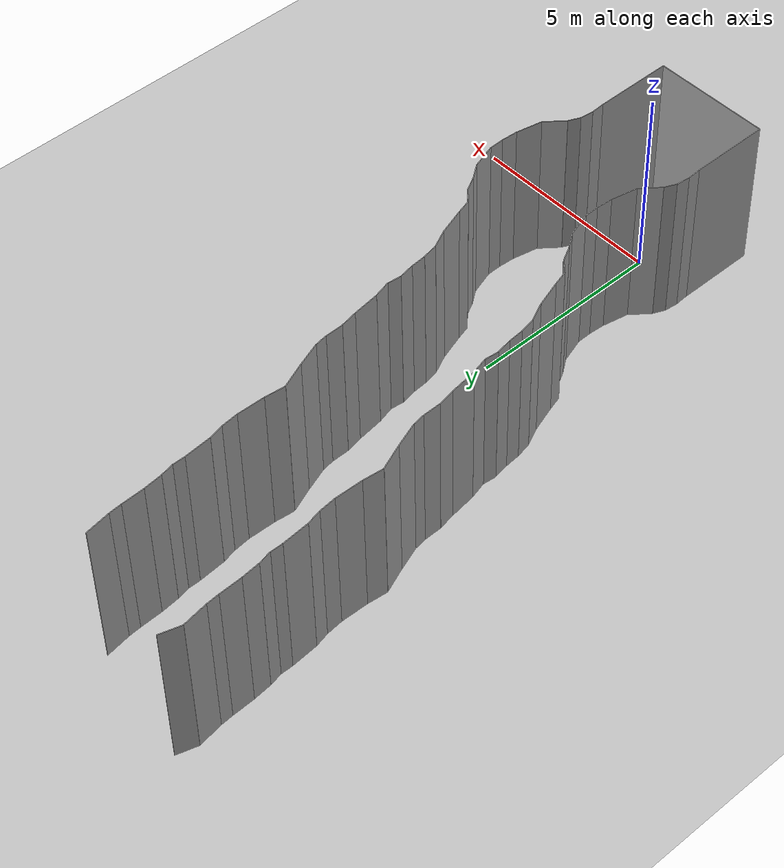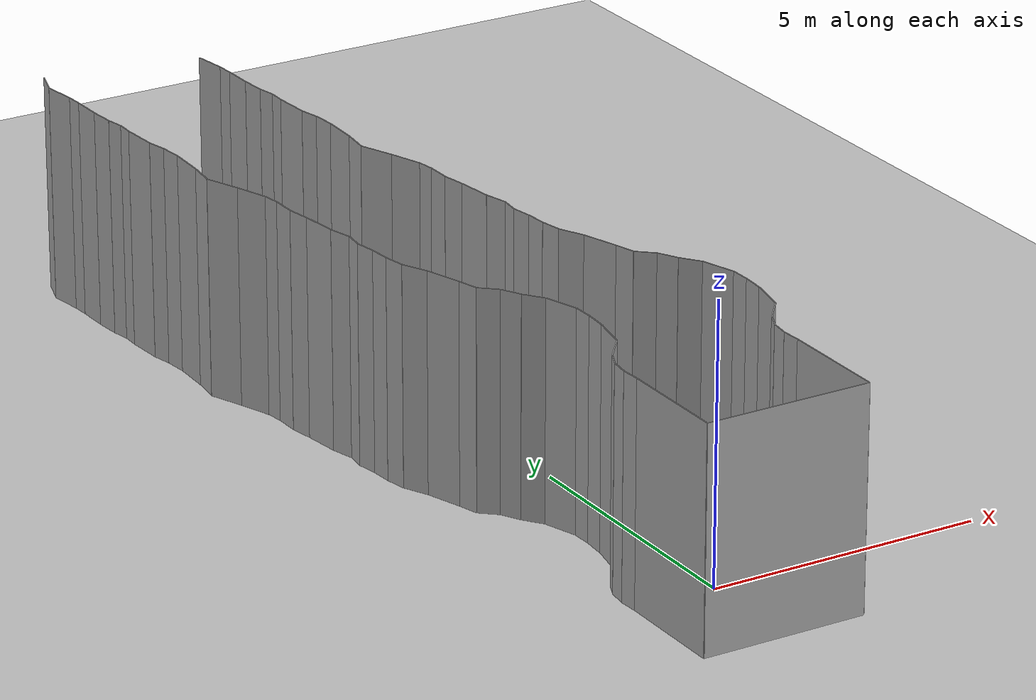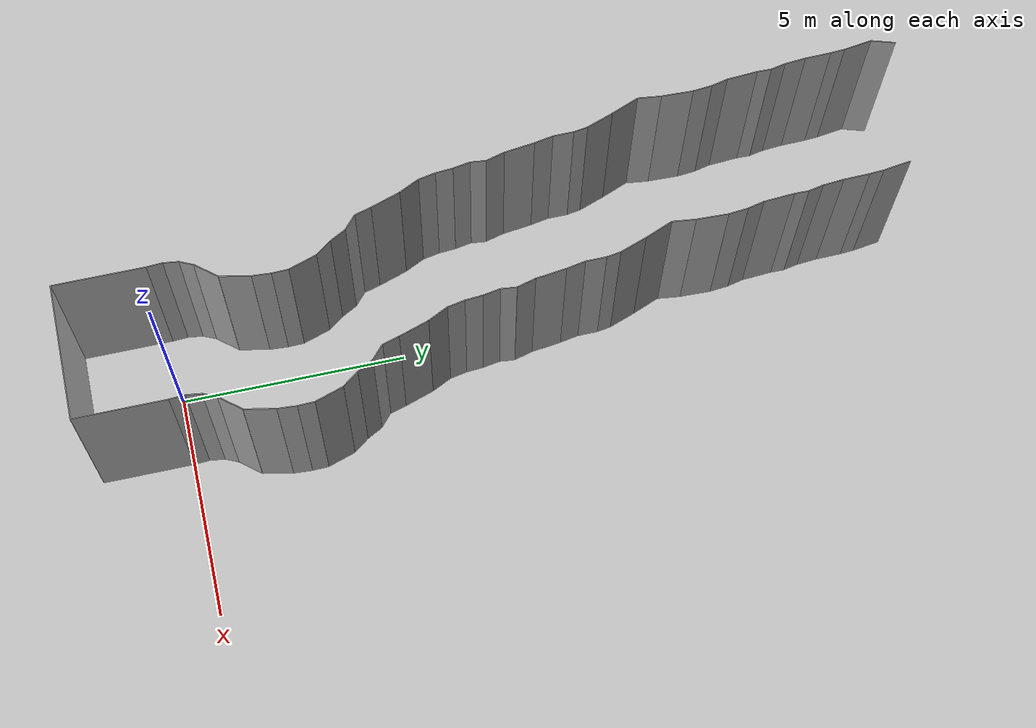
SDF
<sdf version="1.6">
 <world name="default">
  <model name="ground_plane">
   <static>1</static>
   <link name="link">
    <collision name="collision">
     <geometry><plane><normal>0 0 1</normal><size>200 200</size></plane></geometry>
     <surface><friction><ode><mu>100</mu><mu2>50</mu2></ode></friction></surface>
    </collision>
    <visual name="visual">
     <cast_shadows>0</cast_shadows>
     <geometry><plane><normal>0 0 1</normal><size>200 200</size></plane></geometry>
     <material>
      <script><uri>file://media/materials/scripts/gazebo.material</uri><name>Gazebo/Grey</name></script>
     </material>
    </visual>
   </link>
   <pose>0 100 0 0 -0 0</pose>
  </model>
  <model name="wall_back">
   <static>1</static>
   <pose>0.0 -2 2 0.0 0 0.0</pose>
   <link name="link">
    <collision name="collision"><geometry><box><size>3 0.02 4</size></box></geometry></collision>
    <visual name="visual">
     <material>
      <script><name>Gazebo/Grey</name><uri>file://media/materials/scripts/gazebo.material</uri></script>
     </material>
     <geometry><box><size>3 0.02 4</size></box></geometry>
    </visual>
   </link>
  </model>
  <model name="wall_left">
   <static>1</static>
   <pose>1.5 -1 2 0 0 0.00</pose>
   <link name="link">
    <collision name="collision"><geometry><box><size>0.02 2 4</size></box></geometry></collision>
    <visual name="visual">
     <material>
      <script><name>Gazebo/Grey</name><uri>file://media/materials/scripts/gazebo.material</uri></script>
     </material>
     <geometry><box><size>0.02 2 4</size></box></geometry>
    </visual>
   </link>
  </model>
  <model name="wall_right">
   <static>1</static>
   <pose>-1.5 -1 2 0 0 0.00</pose>
   <link name="link">
    <collision name="collision"><geometry><box><size>0.02 2 4</size></box></geometry></collision>
    <visual name="visual">
     <material>
      <script><name>Gazebo/Grey</name><uri>file://media/materials/scripts/gazebo.material</uri></script>
     </material>
     <geometry><box><size>0.02 2 4</size></box></geometry>
    </visual>
   </link>
  </model>
  <model name="wall_0">
   <static>1</static>
   <pose>-1.510469168773756 0.1737599955648286 2 0 0 0.06017799457438244</pose>
   <link name="link">
    <collision name="collision"><geometry><box><size>0.02 0.348150194907 4</size></box></geometry></collision>
    <visual name="visual">
     <material>
      <script><name>Gazebo/Grey</name><uri>file://media/materials/scripts/gazebo.material</uri></script>
     </material>
     <geometry><box><size>0.02 0.348150194907 4</size></box></geometry>
    </visual>
   </link>
  </model>
  <model name="wall_1">
   <static>1</static>
   <pose>1.489530831226244 0.1737599955648286 2 0 0 0.06017799457438244</pose>
   <link name="link">
    <collision name="collision"><geometry><box><size>0.02 0.348150194907 4</size></box></geometry></collision>
    <visual name="visual">
     <material>
      <script><name>Gazebo/Grey</name><uri>file://media/materials/scripts/gazebo.material</uri></script>
     </material>
     <geometry><box><size>0.02 0.348150194907 4</size></box></geometry>
    </visual>
   </link>
  </model>
  <model name="wall_2">
   <static>1</static>
   <pose>-1.4994530378009172 0.5157518972264558 2 0 0 -0.12702476339603733</pose>
   <link name="link">
    <collision name="collision"><geometry><box><size>0.02 0.339196652897 4</size></box></geometry></collision>
    <visual name="visual">
     <material>
      <script><name>Gazebo/Grey</name><uri>file://media/materials/scripts/gazebo.material</uri></script>
     </material>
     <geometry><box><size>0.02 0.339196652897 4</size></box></geometry>
    </visual>
   </link>
  </model>
  <model name="wall_3">
   <static>1</static>
   <pose>1.5005469621990828 0.5157518972264558 2 0 0 -0.12702476339603733</pose>
   <link name="link">
    <collision name="collision"><geometry><box><size>0.02 0.339196652897 4</size></box></geometry></collision>
    <visual name="visual">
     <material>
      <script><name>Gazebo/Grey</name><uri>file://media/materials/scripts/gazebo.material</uri></script>
     </material>
     <geometry><box><size>0.02 0.339196652897 4</size></box></geometry>
    </visual>
   </link>
  </model>
  <model name="wall_4">
   <static>1</static>
   <pose>-1.41199776466791 0.828177129915068 2 0 0 -0.4290821500316682</pose>
   <link name="link">
    <collision name="collision"><geometry><box><size>0.02 0.317135635476 4</size></box></geometry></collision>
    <visual name="visual">
     <material>
      <script><name>Gazebo/Grey</name><uri>file://media/materials/scripts/gazebo.material</uri></script>
     </material>
     <geometry><box><size>0.02 0.317135635476 4</size></box></geometry>
    </visual>
   </link>
  </model>
  <model name="wall_5">
   <static>1</static>
   <pose>1.58800223533209 0.828177129915068 2 0 0 -0.4290821500316682</pose>
   <link name="link">
    <collision name="collision"><geometry><box><size>0.02 0.317135635476 4</size></box></geometry></collision>
    <visual name="visual">
     <material>
      <script><name>Gazebo/Grey</name><uri>file://media/materials/scripts/gazebo.material</uri></script>
     </material>
     <geometry><box><size>0.02 0.317135635476 4</size></box></geometry>
    </visual>
   </link>
  </model>
  <model name="wall_6">
   <static>1</static>
   <pose>-1.1598921838826721 1.201235196086324 2 0 0 -0.6827980242633842</pose>
   <link name="link">
    <collision name="collision"><geometry><box><size>0.02 0.590001808012 4</size></box></geometry></collision>
    <visual name="visual">
     <material>
      <script><name>Gazebo/Grey</name><uri>file://media/materials/scripts/gazebo.material</uri></script>
     </material>
     <geometry><box><size>0.02 0.590001808012 4</size></box></geometry>
    </visual>
   </link>
  </model>
  <model name="wall_7">
   <static>1</static>
   <pose>1.8401078161173279 1.201235196086324 2 0 0 -0.6827980242633842</pose>
   <link name="link">
    <collision name="collision"><geometry><box><size>0.02 0.590001808012 4</size></box></geometry></collision>
    <visual name="visual">
     <material>
      <script><name>Gazebo/Grey</name><uri>file://media/materials/scripts/gazebo.material</uri></script>
     </material>
     <geometry><box><size>0.02 0.590001808012 4</size></box></geometry>
    </visual>
   </link>
  </model>
  <model name="wall_8">
   <static>1</static>
   <pose>-0.9057189968333267 1.7638394172357073 2 0 0 -0.2011084965366152</pose>
   <link name="link">
    <collision name="collision"><geometry><box><size>0.02 0.681208202544 4</size></box></geometry></collision>
    <visual name="visual">
     <material>
      <script><name>Gazebo/Grey</name><uri>file://media/materials/scripts/gazebo.material</uri></script>
     </material>
     <geometry><box><size>0.02 0.681208202544 4</size></box></geometry>
    </visual>
   </link>
  </model>
  <model name="wall_9">
   <static>1</static>
   <pose>2.094281003166673 1.7638394172357073 2 0 0 -0.2011084965366152</pose>
   <link name="link">
    <collision name="collision"><geometry><box><size>0.02 0.681208202544 4</size></box></geometry></collision>
    <visual name="visual">
     <material>
      <script><name>Gazebo/Grey</name><uri>file://media/materials/scripts/gazebo.material</uri></script>
     </material>
     <geometry><box><size>0.02 0.681208202544 4</size></box></geometry>
    </visual>
   </link>
  </model>
  <model name="wall_10">
   <static>1</static>
   <pose>-0.8237843901977059 2.3054047616103084 2 0 0 -0.06676921285618291</pose>
   <link name="link">
    <collision name="collision"><geometry><box><size>0.02 0.416579964038 4</size></box></geometry></collision>
    <visual name="visual">
     <material>
      <script><name>Gazebo/Grey</name><uri>file://media/materials/scripts/gazebo.material</uri></script>
     </material>
     <geometry><box><size>0.02 0.416579964038 4</size></box></geometry>
    </visual>
   </link>
  </model>
  <model name="wall_11">
   <static>1</static>
   <pose>2.176215609802294 2.3054047616103084 2 0 0 -0.06676921285618291</pose>
   <link name="link">
    <collision name="collision"><geometry><box><size>0.02 0.416579964038 4</size></box></geometry></collision>
    <visual name="visual">
     <material>
      <script><name>Gazebo/Grey</name><uri>file://media/materials/scripts/gazebo.material</uri></script>
     </material>
     <geometry><box><size>0.02 0.416579964038 4</size></box></geometry>
    </visual>
   </link>
  </model>
  <model name="wall_12">
   <static>1</static>
   <pose>-0.8146648058953255 2.6953685319939176 2 0 0 0.026223796939105346</pose>
   <link name="link">
    <collision name="collision"><geometry><box><size>0.02 0.364401105025 4</size></box></geometry></collision>
    <visual name="visual">
     <material>
      <script><name>Gazebo/Grey</name><uri>file://media/materials/scripts/gazebo.material</uri></script>
     </material>
     <geometry><box><size>0.02 0.364401105025 4</size></box></geometry>
    </visual>
   </link>
  </model>
  <model name="wall_13">
   <static>1</static>
   <pose>2.1853351941046744 2.6953685319939176 2 0 0 0.026223796939105346</pose>
   <link name="link">
    <collision name="collision"><geometry><box><size>0.02 0.364401105025 4</size></box></geometry></collision>
    <visual name="visual">
     <material>
      <script><name>Gazebo/Grey</name><uri>file://media/materials/scripts/gazebo.material</uri></script>
     </material>
     <geometry><box><size>0.02 0.364401105025 4</size></box></geometry>
    </visual>
   </link>
  </model>
  <model name="wall_14">
   <static>1</static>
   <pose>-0.9193898926830465 3.187725549000354 2 0 0 0.31168284968315185</pose>
   <link name="link">
    <collision name="collision"><geometry><box><size>0.02 0.651844850915 4</size></box></geometry></collision>
    <visual name="visual">
     <material>
      <script><name>Gazebo/Grey</name><uri>file://media/materials/scripts/gazebo.material</uri></script>
     </material>
     <geometry><box><size>0.02 0.651844850915 4</size></box></geometry>
    </visual>
   </link>
  </model>
  <model name="wall_15">
   <static>1</static>
   <pose>2.0806101073169536 3.187725549000354 2 0 0 0.31168284968315185</pose>
   <link name="link">
    <collision name="collision"><geometry><box><size>0.02 0.651844850915 4</size></box></geometry></collision>
    <visual name="visual">
     <material>
      <script><name>Gazebo/Grey</name><uri>file://media/materials/scripts/gazebo.material</uri></script>
     </material>
     <geometry><box><size>0.02 0.651844850915 4</size></box></geometry>
    </visual>
   </link>
  </model>
  <model name="wall_16">
   <static>1</static>
   <pose>-1.1455721387722844 3.668385369498843 2 0 0 0.6374814492717766</pose>
   <link name="link">
    <collision name="collision"><geometry><box><size>0.02 0.424194345688 4</size></box></geometry></collision>
    <visual name="visual">
     <material>
      <script><name>Gazebo/Grey</name><uri>file://media/materials/scripts/gazebo.material</uri></script>
     </material>
     <geometry><box><size>0.02 0.424194345688 4</size></box></geometry>
    </visual>
   </link>
  </model>
  <model name="wall_17">
   <static>1</static>
   <pose>1.8544278612277156 3.668385369498843 2 0 0 0.6374814492717766</pose>
   <link name="link">
    <collision name="collision"><geometry><box><size>0.02 0.424194345688 4</size></box></geometry></collision>
    <visual name="visual">
     <material>
      <script><name>Gazebo/Grey</name><uri>file://media/materials/scripts/gazebo.material</uri></script>
     </material>
     <geometry><box><size>0.02 0.424194345688 4</size></box></geometry>
    </visual>
   </link>
  </model>
  <model name="wall_18">
   <static>1</static>
   <pose>-1.3664680322749911 4.014171257539867 2 0 0 0.4950224103680032</pose>
   <link name="link">
    <collision name="collision"><geometry><box><size>0.02 0.398530757652 4</size></box></geometry></collision>
    <visual name="visual">
     <material>
      <script><name>Gazebo/Grey</name><uri>file://media/materials/scripts/gazebo.material</uri></script>
     </material>
     <geometry><box><size>0.02 0.398530757652 4</size></box></geometry>
    </visual>
   </link>
  </model>
  <model name="wall_19">
   <static>1</static>
   <pose>1.6335319677250089 4.014171257539867 2 0 0 0.4950224103680032</pose>
   <link name="link">
    <collision name="collision"><geometry><box><size>0.02 0.398530757652 4</size></box></geometry></collision>
    <visual name="visual">
     <material>
      <script><name>Gazebo/Grey</name><uri>file://media/materials/scripts/gazebo.material</uri></script>
     </material>
     <geometry><box><size>0.02 0.398530757652 4</size></box></geometry>
    </visual>
   </link>
  </model>
  <model name="wall_20">
   <static>1</static>
   <pose>-1.6069622279533375 4.3185332015171225 2 0 0 0.8465050263261898</pose>
   <link name="link">
    <collision name="collision"><geometry><box><size>0.02 0.38942296853 4</size></box></geometry></collision>
    <visual name="visual">
     <material>
      <script><name>Gazebo/Grey</name><uri>file://media/materials/scripts/gazebo.material</uri></script>
     </material>
     <geometry><box><size>0.02 0.38942296853 4</size></box></geometry>
    </visual>
   </link>
  </model>
  <model name="wall_21">
   <static>1</static>
   <pose>1.3930377720466625 4.3185332015171225 2 0 0 0.8465050263261898</pose>
   <link name="link">
    <collision name="collision"><geometry><box><size>0.02 0.38942296853 4</size></box></geometry></collision>
    <visual name="visual">
     <material>
      <script><name>Gazebo/Grey</name><uri>file://media/materials/scripts/gazebo.material</uri></script>
     </material>
     <geometry><box><size>0.02 0.38942296853 4</size></box></geometry>
    </visual>
   </link>
  </model>
  <model name="wall_22">
   <static>1</static>
   <pose>-1.8047803618723768 4.632374893844421 2 0 0 0.27418359341675613</pose>
   <link name="link">
    <collision name="collision"><geometry><box><size>0.02 0.383993318341 4</size></box></geometry></collision>
    <visual name="visual">
     <material>
      <script><name>Gazebo/Grey</name><uri>file://media/materials/scripts/gazebo.material</uri></script>
     </material>
     <geometry><box><size>0.02 0.383993318341 4</size></box></geometry>
    </visual>
   </link>
  </model>
  <model name="wall_23">
   <static>1</static>
   <pose>1.1952196381276232 4.632374893844421 2 0 0 0.27418359341675613</pose>
   <link name="link">
    <collision name="collision"><geometry><box><size>0.02 0.383993318341 4</size></box></geometry></collision>
    <visual name="visual">
     <material>
      <script><name>Gazebo/Grey</name><uri>file://media/materials/scripts/gazebo.material</uri></script>
     </material>
     <geometry><box><size>0.02 0.383993318341 4</size></box></geometry>
    </visual>
   </link>
  </model>
  <model name="wall_24">
   <static>1</static>
   <pose>-1.963753511820921 5.145152706719379 2 0 0 0.3153435752088974</pose>
   <link name="link">
    <collision name="collision"><geometry><box><size>0.02 0.689926116398 4</size></box></geometry></collision>
    <visual name="visual">
     <material>
      <script><name>Gazebo/Grey</name><uri>file://media/materials/scripts/gazebo.material</uri></script>
     </material>
     <geometry><box><size>0.02 0.689926116398 4</size></box></geometry>
    </visual>
   </link>
  </model>
  <model name="wall_25">
   <static>1</static>
   <pose>1.036246488179079 5.145152706719379 2 0 0 0.3153435752088974</pose>
   <link name="link">
    <collision name="collision"><geometry><box><size>0.02 0.689926116398 4</size></box></geometry></collision>
    <visual name="visual">
     <material>
      <script><name>Gazebo/Grey</name><uri>file://media/materials/scripts/gazebo.material</uri></script>
     </material>
     <geometry><box><size>0.02 0.689926116398 4</size></box></geometry>
    </visual>
   </link>
  </model>
  <model name="wall_26">
   <static>1</static>
   <pose>-2.1779065068808707 5.694591785305188 2 0 0 0.450640609318869</pose>
   <link name="link">
    <collision name="collision"><geometry><box><size>0.02 0.492099526882 4</size></box></geometry></collision>
    <visual name="visual">
     <material>
      <script><name>Gazebo/Grey</name><uri>file://media/materials/scripts/gazebo.material</uri></script>
     </material>
     <geometry><box><size>0.02 0.492099526882 4</size></box></geometry>
    </visual>
   </link>
  </model>
  <model name="wall_27">
   <static>1</static>
   <pose>0.8220934931191293 5.694591785305188 2 0 0 0.450640609318869</pose>
   <link name="link">
    <collision name="collision"><geometry><box><size>0.02 0.492099526882 4</size></box></geometry></collision>
    <visual name="visual">
     <material>
      <script><name>Gazebo/Grey</name><uri>file://media/materials/scripts/gazebo.material</uri></script>
     </material>
     <geometry><box><size>0.02 0.492099526882 4</size></box></geometry>
    </visual>
   </link>
  </model>
  <model name="wall_28">
   <static>1</static>
   <pose>-2.32236321173488 6.109094926779471 2 0 0 0.19085240196837205</pose>
   <link name="link">
    <collision name="collision"><geometry><box><size>0.02 0.393172780468 4</size></box></geometry></collision>
    <visual name="visual">
     <material>
      <script><name>Gazebo/Grey</name><uri>file://media/materials/scripts/gazebo.material</uri></script>
     </material>
     <geometry><box><size>0.02 0.393172780468 4</size></box></geometry>
    </visual>
   </link>
  </model>
  <model name="wall_29">
   <static>1</static>
   <pose>0.67763678826512 6.109094926779471 2 0 0 0.19085240196837205</pose>
   <link name="link">
    <collision name="collision"><geometry><box><size>0.02 0.393172780468 4</size></box></geometry></collision>
    <visual name="visual">
     <material>
      <script><name>Gazebo/Grey</name><uri>file://media/materials/scripts/gazebo.material</uri></script>
     </material>
     <geometry><box><size>0.02 0.393172780468 4</size></box></geometry>
    </visual>
   </link>
  </model>
  <model name="wall_30">
   <static>1</static>
   <pose>-2.374198630573105 6.495337697885498 2 0 0 0.07512669214178795</pose>
   <link name="link">
    <collision name="collision"><geometry><box><size>0.02 0.387544782264 4</size></box></geometry></collision>
    <visual name="visual">
     <material>
      <script><name>Gazebo/Grey</name><uri>file://media/materials/scripts/gazebo.material</uri></script>
     </material>
     <geometry><box><size>0.02 0.387544782264 4</size></box></geometry>
    </visual>
   </link>
  </model>
  <model name="wall_31">
   <static>1</static>
   <pose>0.6258013694268949 6.495337697885498 2 0 0 0.07512669214178795</pose>
   <link name="link">
    <collision name="collision"><geometry><box><size>0.02 0.387544782264 4</size></box></geometry></collision>
    <visual name="visual">
     <material>
      <script><name>Gazebo/Grey</name><uri>file://media/materials/scripts/gazebo.material</uri></script>
     </material>
     <geometry><box><size>0.02 0.387544782264 4</size></box></geometry>
    </visual>
   </link>
  </model>
  <model name="wall_32">
   <static>1</static>
   <pose>-2.4218261019833407 6.88067813417852 2 0 0 0.17053539702044512</pose>
   <link name="link">
    <collision name="collision"><geometry><box><size>0.02 0.389884883473 4</size></box></geometry></collision>
    <visual name="visual">
     <material>
      <script><name>Gazebo/Grey</name><uri>file://media/materials/scripts/gazebo.material</uri></script>
     </material>
     <geometry><box><size>0.02 0.389884883473 4</size></box></geometry>
    </visual>
   </link>
  </model>
  <model name="wall_33">
   <static>1</static>
   <pose>0.5781738980166593 6.88067813417852 2 0 0 0.17053539702044512</pose>
   <link name="link">
    <collision name="collision"><geometry><box><size>0.02 0.389884883473 4</size></box></geometry></collision>
    <visual name="visual">
     <material>
      <script><name>Gazebo/Grey</name><uri>file://media/materials/scripts/gazebo.material</uri></script>
     </material>
     <geometry><box><size>0.02 0.389884883473 4</size></box></geometry>
    </visual>
   </link>
  </model>
  <model name="wall_34">
   <static>1</static>
   <pose>-2.4358964294610845 7.2439056489470754 2 0 0 -0.11066190136848338</pose>
   <link name="link">
    <collision name="collision"><geometry><box><size>0.02 0.34433200213 4</size></box></geometry></collision>
    <visual name="visual">
     <material>
      <script><name>Gazebo/Grey</name><uri>file://media/materials/scripts/gazebo.material</uri></script>
     </material>
     <geometry><box><size>0.02 0.34433200213 4</size></box></geometry>
    </visual>
   </link>
  </model>
  <model name="wall_35">
   <static>1</static>
   <pose>0.5641035705389155 7.2439056489470754 2 0 0 -0.11066190136848338</pose>
   <link name="link">
    <collision name="collision"><geometry><box><size>0.02 0.34433200213 4</size></box></geometry></collision>
    <visual name="visual">
     <material>
      <script><name>Gazebo/Grey</name><uri>file://media/materials/scripts/gazebo.material</uri></script>
     </material>
     <geometry><box><size>0.02 0.34433200213 4</size></box></geometry>
    </visual>
   </link>
  </model>
  <model name="wall_36">
   <static>1</static>
   <pose>-2.471697332495646 7.624812421858121 2 0 0 0.255563577798341</pose>
   <link name="link">
    <collision name="collision"><geometry><box><size>0.02 0.433673021365 4</size></box></geometry></collision>
    <visual name="visual">
     <material>
      <script><name>Gazebo/Grey</name><uri>file://media/materials/scripts/gazebo.material</uri></script>
     </material>
     <geometry><box><size>0.02 0.433673021365 4</size></box></geometry>
    </visual>
   </link>
  </model>
  <model name="wall_37">
   <static>1</static>
   <pose>0.5283026675043541 7.624812421858121 2 0 0 0.255563577798341</pose>
   <link name="link">
    <collision name="collision"><geometry><box><size>0.02 0.433673021365 4</size></box></geometry></collision>
    <visual name="visual">
     <material>
      <script><name>Gazebo/Grey</name><uri>file://media/materials/scripts/gazebo.material</uri></script>
     </material>
     <geometry><box><size>0.02 0.433673021365 4</size></box></geometry>
    </visual>
   </link>
  </model>
  <model name="wall_38">
   <static>1</static>
   <pose>-2.5685930408816215 8.171645667004977 2 0 0 0.12421339007388195</pose>
   <link name="link">
    <collision name="collision"><geometry><box><size>0.02 0.679312553434 4</size></box></geometry></collision>
    <visual name="visual">
     <material>
      <script><name>Gazebo/Grey</name><uri>file://media/materials/scripts/gazebo.material</uri></script>
     </material>
     <geometry><box><size>0.02 0.679312553434 4</size></box></geometry>
    </visual>
   </link>
  </model>
  <model name="wall_39">
   <static>1</static>
   <pose>0.43140695911837845 8.171645667004977 2 0 0 0.12421339007388195</pose>
   <link name="link">
    <collision name="collision"><geometry><box><size>0.02 0.679312553434 4</size></box></geometry></collision>
    <visual name="visual">
     <material>
      <script><name>Gazebo/Grey</name><uri>file://media/materials/scripts/gazebo.material</uri></script>
     </material>
     <geometry><box><size>0.02 0.679312553434 4</size></box></geometry>
    </visual>
   </link>
  </model>
  <model name="wall_40">
   <static>1</static>
   <pose>-2.649137019150533 8.720029882270513 2 0 0 0.18001926450939906</pose>
   <link name="link">
    <collision name="collision"><geometry><box><size>0.02 0.429632443371 4</size></box></geometry></collision>
    <visual name="visual">
     <material>
      <script><name>Gazebo/Grey</name><uri>file://media/materials/scripts/gazebo.material</uri></script>
     </material>
     <geometry><box><size>0.02 0.429632443371 4</size></box></geometry>
    </visual>
   </link>
  </model>
  <model name="wall_41">
   <static>1</static>
   <pose>0.3508629808494672 8.720029882270513 2 0 0 0.18001926450939906</pose>
   <link name="link">
    <collision name="collision"><geometry><box><size>0.02 0.429632443371 4</size></box></geometry></collision>
    <visual name="visual">
     <material>
      <script><name>Gazebo/Grey</name><uri>file://media/materials/scripts/gazebo.material</uri></script>
     </material>
     <geometry><box><size>0.02 0.429632443371 4</size></box></geometry>
    </visual>
   </link>
  </model>
  <model name="wall_42">
   <static>1</static>
   <pose>-2.6891948705922246 9.158319777123236 2 0 0 0.007029442426870586</pose>
   <link name="link">
    <collision name="collision"><geometry><box><size>0.02 0.453901316203 4</size></box></geometry></collision>
    <visual name="visual">
     <material>
      <script><name>Gazebo/Grey</name><uri>file://media/materials/scripts/gazebo.material</uri></script>
     </material>
     <geometry><box><size>0.02 0.453901316203 4</size></box></geometry>
    </visual>
   </link>
  </model>
  <model name="wall_43">
   <static>1</static>
   <pose>0.3108051294077754 9.158319777123236 2 0 0 0.007029442426870586</pose>
   <link name="link">
    <collision name="collision"><geometry><box><size>0.02 0.453901316203 4</size></box></geometry></collision>
    <visual name="visual">
     <material>
      <script><name>Gazebo/Grey</name><uri>file://media/materials/scripts/gazebo.material</uri></script>
     </material>
     <geometry><box><size>0.02 0.453901316203 4</size></box></geometry>
    </visual>
   </link>
  </model>
  <model name="wall_44">
   <static>1</static>
   <pose>-2.713628992946866 9.540722898319459 2 0 0 0.1458694389386923</pose>
   <link name="link">
    <collision name="collision"><geometry><box><size>0.02 0.314253543094 4</size></box></geometry></collision>
    <visual name="visual">
     <material>
      <script><name>Gazebo/Grey</name><uri>file://media/materials/scripts/gazebo.material</uri></script>
     </material>
     <geometry><box><size>0.02 0.314253543094 4</size></box></geometry>
    </visual>
   </link>
  </model>
  <model name="wall_45">
   <static>1</static>
   <pose>0.286371007053134 9.540722898319459 2 0 0 0.1458694389386923</pose>
   <link name="link">
    <collision name="collision"><geometry><box><size>0.02 0.314253543094 4</size></box></geometry></collision>
    <visual name="visual">
     <material>
      <script><name>Gazebo/Grey</name><uri>file://media/materials/scripts/gazebo.material</uri></script>
     </material>
     <geometry><box><size>0.02 0.314253543094 4</size></box></geometry>
    </visual>
   </link>
  </model>
  <model name="wall_46">
   <static>1</static>
   <pose>-2.8413232840923013 9.992477060414144 2 0 0 0.3401338914865158</pose>
   <link name="link">
    <collision name="collision"><geometry><box><size>0.02 0.628604957994 4</size></box></geometry></collision>
    <visual name="visual">
     <material>
      <script><name>Gazebo/Grey</name><uri>file://media/materials/scripts/gazebo.material</uri></script>
     </material>
     <geometry><box><size>0.02 0.628604957994 4</size></box></geometry>
    </visual>
   </link>
  </model>
  <model name="wall_47">
   <static>1</static>
   <pose>0.15867671590769872 9.992477060414144 2 0 0 0.3401338914865158</pose>
   <link name="link">
    <collision name="collision"><geometry><box><size>0.02 0.628604957994 4</size></box></geometry></collision>
    <visual name="visual">
     <material>
      <script><name>Gazebo/Grey</name><uri>file://media/materials/scripts/gazebo.material</uri></script>
     </material>
     <geometry><box><size>0.02 0.628604957994 4</size></box></geometry>
    </visual>
   </link>
  </model>
  <model name="wall_48">
   <static>1</static>
   <pose>-3.069808783457443 10.599638395436024 2 0 0 0.3785189918229561</pose>
   <link name="link">
    <collision name="collision"><geometry><box><size>0.02 0.669093649854 4</size></box></geometry></collision>
    <visual name="visual">
     <material>
      <script><name>Gazebo/Grey</name><uri>file://media/materials/scripts/gazebo.material</uri></script>
     </material>
     <geometry><box><size>0.02 0.669093649854 4</size></box></geometry>
    </visual>
   </link>
  </model>
  <model name="wall_49">
   <static>1</static>
   <pose>-0.06980878345744301 10.599638395436024 2 0 0 0.3785189918229561</pose>
   <link name="link">
    <collision name="collision"><geometry><box><size>0.02 0.669093649854 4</size></box></geometry></collision>
    <visual name="visual">
     <material>
      <script><name>Gazebo/Grey</name><uri>file://media/materials/scripts/gazebo.material</uri></script>
     </material>
     <geometry><box><size>0.02 0.669093649854 4</size></box></geometry>
    </visual>
   </link>
  </model>
  <model name="wall_50">
   <static>1</static>
   <pose>-3.162965105965186 11.16699354636697 2 0 0 -0.11825611039666503</pose>
   <link name="link">
    <collision name="collision"><geometry><box><size>0.02 0.516587720495 4</size></box></geometry></collision>
    <visual name="visual">
     <material>
      <script><name>Gazebo/Grey</name><uri>file://media/materials/scripts/gazebo.material</uri></script>
     </material>
     <geometry><box><size>0.02 0.516587720495 4</size></box></geometry>
    </visual>
   </link>
  </model>
  <model name="wall_51">
   <static>1</static>
   <pose>-0.1629651059651862 11.16699354636697 2 0 0 -0.11825611039666503</pose>
   <link name="link">
    <collision name="collision"><geometry><box><size>0.02 0.516587720495 4</size></box></geometry></collision>
    <visual name="visual">
     <material>
      <script><name>Gazebo/Grey</name><uri>file://media/materials/scripts/gazebo.material</uri></script>
     </material>
     <geometry><box><size>0.02 0.516587720495 4</size></box></geometry>
    </visual>
   </link>
  </model>
  <model name="wall_52">
   <static>1</static>
   <pose>-3.121385192332371 11.772022477766635 2 0 0 -0.031854316212388885</pose>
   <link name="link">
    <collision name="collision"><geometry><box><size>0.02 0.697431858511 4</size></box></geometry></collision>
    <visual name="visual">
     <material>
      <script><name>Gazebo/Grey</name><uri>file://media/materials/scripts/gazebo.material</uri></script>
     </material>
     <geometry><box><size>0.02 0.697431858511 4</size></box></geometry>
    </visual>
   </link>
  </model>
  <model name="wall_53">
   <static>1</static>
   <pose>-0.121385192332371 11.772022477766635 2 0 0 -0.031854316212388885</pose>
   <link name="link">
    <collision name="collision"><geometry><box><size>0.02 0.697431858511 4</size></box></geometry></collision>
    <visual name="visual">
     <material>
      <script><name>Gazebo/Grey</name><uri>file://media/materials/scripts/gazebo.material</uri></script>
     </material>
     <geometry><box><size>0.02 0.697431858511 4</size></box></geometry>
    </visual>
   </link>
  </model>
  <model name="wall_54">
   <static>1</static>
   <pose>-3.1298766354527037 12.33436319061964 2 0 0 0.09140741682924972</pose>
   <link name="link">
    <collision name="collision"><geometry><box><size>0.02 0.429395999363 4</size></box></geometry></collision>
    <visual name="visual">
     <material>
      <script><name>Gazebo/Grey</name><uri>file://media/materials/scripts/gazebo.material</uri></script>
     </material>
     <geometry><box><size>0.02 0.429395999363 4</size></box></geometry>
    </visual>
   </link>
  </model>
  <model name="wall_55">
   <static>1</static>
   <pose>-0.12987663545270367 12.33436319061964 2 0 0 0.09140741682924972</pose>
   <link name="link">
    <collision name="collision"><geometry><box><size>0.02 0.429395999363 4</size></box></geometry></collision>
    <visual name="visual">
     <material>
      <script><name>Gazebo/Grey</name><uri>file://media/materials/scripts/gazebo.material</uri></script>
     </material>
     <geometry><box><size>0.02 0.429395999363 4</size></box></geometry>
    </visual>
   </link>
  </model>
  <model name="wall_56">
   <static>1</static>
   <pose>-3.1899851738225578 12.729374305036183 2 0 0 0.21994176333821663</pose>
   <link name="link">
    <collision name="collision"><geometry><box><size>0.02 0.371364974453 4</size></box></geometry></collision>
    <visual name="visual">
     <material>
      <script><name>Gazebo/Grey</name><uri>file://media/materials/scripts/gazebo.material</uri></script>
     </material>
     <geometry><box><size>0.02 0.371364974453 4</size></box></geometry>
    </visual>
   </link>
  </model>
  <model name="wall_57">
   <static>1</static>
   <pose>-0.18998517382255775 12.729374305036183 2 0 0 0.21994176333821663</pose>
   <link name="link">
    <collision name="collision"><geometry><box><size>0.02 0.371364974453 4</size></box></geometry></collision>
    <visual name="visual">
     <material>
      <script><name>Gazebo/Grey</name><uri>file://media/materials/scripts/gazebo.material</uri></script>
     </material>
     <geometry><box><size>0.02 0.371364974453 4</size></box></geometry>
    </visual>
   </link>
  </model>
  <model name="wall_58">
   <static>1</static>
   <pose>-3.2531646637233225 13.25227475203064 2 0 0 0.06624538680910196</pose>
   <link name="link">
    <collision name="collision"><geometry><box><size>0.02 0.684884284759 4</size></box></geometry></collision>
    <visual name="visual">
     <material>
      <script><name>Gazebo/Grey</name><uri>file://media/materials/scripts/gazebo.material</uri></script>
     </material>
     <geometry><box><size>0.02 0.684884284759 4</size></box></geometry>
    </visual>
   </link>
  </model>
  <model name="wall_59">
   <static>1</static>
   <pose>-0.25316466372332247 13.25227475203064 2 0 0 0.06624538680910196</pose>
   <link name="link">
    <collision name="collision"><geometry><box><size>0.02 0.684884284759 4</size></box></geometry></collision>
    <visual name="visual">
     <material>
      <script><name>Gazebo/Grey</name><uri>file://media/materials/scripts/gazebo.material</uri></script>
     </material>
     <geometry><box><size>0.02 0.684884284759 4</size></box></geometry>
    </visual>
   </link>
  </model>
  <model name="wall_60">
   <static>1</static>
   <pose>-3.272919042660725 13.74881881598639 2 0 0 -0.018817200569160534</pose>
   <link name="link">
    <collision name="collision"><geometry><box><size>0.02 0.309760923857 4</size></box></geometry></collision>
    <visual name="visual">
     <material>
      <script><name>Gazebo/Grey</name><uri>file://media/materials/scripts/gazebo.material</uri></script>
     </material>
     <geometry><box><size>0.02 0.309760923857 4</size></box></geometry>
    </visual>
   </link>
  </model>
  <model name="wall_61">
   <static>1</static>
   <pose>-0.2729190426607251 13.74881881598639 2 0 0 -0.018817200569160534</pose>
   <link name="link">
    <collision name="collision"><geometry><box><size>0.02 0.309760923857 4</size></box></geometry></collision>
    <visual name="visual">
     <material>
      <script><name>Gazebo/Grey</name><uri>file://media/materials/scripts/gazebo.material</uri></script>
     </material>
     <geometry><box><size>0.02 0.309760923857 4</size></box></geometry>
    </visual>
   </link>
  </model>
  <model name="wall_62">
   <static>1</static>
   <pose>-3.3021814037474555 14.066867854048839 2 0 0 0.19466851493078532</pose>
   <link name="link">
    <collision name="collision"><geometry><box><size>0.02 0.332675620036 4</size></box></geometry></collision>
    <visual name="visual">
     <material>
      <script><name>Gazebo/Grey</name><uri>file://media/materials/scripts/gazebo.material</uri></script>
     </material>
     <geometry><box><size>0.02 0.332675620036 4</size></box></geometry>
    </visual>
   </link>
  </model>
  <model name="wall_63">
   <static>1</static>
   <pose>-0.3021814037474555 14.066867854048839 2 0 0 0.19466851493078532</pose>
   <link name="link">
    <collision name="collision"><geometry><box><size>0.02 0.332675620036 4</size></box></geometry></collision>
    <visual name="visual">
     <material>
      <script><name>Gazebo/Grey</name><uri>file://media/materials/scripts/gazebo.material</uri></script>
     </material>
     <geometry><box><size>0.02 0.332675620036 4</size></box></geometry>
    </visual>
   </link>
  </model>
  <model name="wall_64">
   <static>1</static>
   <pose>-3.3541571712531906 14.462953008625506 2 0 0 0.0848114500214876</pose>
   <link name="link">
    <collision name="collision"><geometry><box><size>0.02 0.467458520212 4</size></box></geometry></collision>
    <visual name="visual">
     <material>
      <script><name>Gazebo/Grey</name><uri>file://media/materials/scripts/gazebo.material</uri></script>
     </material>
     <geometry><box><size>0.02 0.467458520212 4</size></box></geometry>
    </visual>
   </link>
  </model>
  <model name="wall_65">
   <static>1</static>
   <pose>-0.3541571712531906 14.462953008625506 2 0 0 0.0848114500214876</pose>
   <link name="link">
    <collision name="collision"><geometry><box><size>0.02 0.467458520212 4</size></box></geometry></collision>
    <visual name="visual">
     <material>
      <script><name>Gazebo/Grey</name><uri>file://media/materials/scripts/gazebo.material</uri></script>
     </material>
     <geometry><box><size>0.02 0.467458520212 4</size></box></geometry>
    </visual>
   </link>
  </model>
  <model name="wall_66">
   <static>1</static>
   <pose>-3.3794987564947947 14.982548874729329 2 0 0 0.0193289279880764</pose>
   <link name="link">
    <collision name="collision"><geometry><box><size>0.02 0.573520547309 4</size></box></geometry></collision>
    <visual name="visual">
     <material>
      <script><name>Gazebo/Grey</name><uri>file://media/materials/scripts/gazebo.material</uri></script>
     </material>
     <geometry><box><size>0.02 0.573520547309 4</size></box></geometry>
    </visual>
   </link>
  </model>
  <model name="wall_67">
   <static>1</static>
   <pose>-0.3794987564947947 14.982548874729329 2 0 0 0.0193289279880764</pose>
   <link name="link">
    <collision name="collision"><geometry><box><size>0.02 0.573520547309 4</size></box></geometry></collision>
    <visual name="visual">
     <material>
      <script><name>Gazebo/Grey</name><uri>file://media/materials/scripts/gazebo.material</uri></script>
     </material>
     <geometry><box><size>0.02 0.573520547309 4</size></box></geometry>
    </visual>
   </link>
  </model>
  <model name="wall_68">
   <static>1</static>
   <pose>-3.394325481687707 15.425965754648598 2 0 0 0.05917587708723591</pose>
   <link name="link">
    <collision name="collision"><geometry><box><size>0.02 0.313969912045 4</size></box></geometry></collision>
    <visual name="visual">
     <material>
      <script><name>Gazebo/Grey</name><uri>file://media/materials/scripts/gazebo.material</uri></script>
     </material>
     <geometry><box><size>0.02 0.313969912045 4</size></box></geometry>
    </visual>
   </link>
  </model>
  <model name="wall_69">
   <static>1</static>
   <pose>-0.39432548168770687 15.425965754648598 2 0 0 0.05917587708723591</pose>
   <link name="link">
    <collision name="collision"><geometry><box><size>0.02 0.313969912045 4</size></box></geometry></collision>
    <visual name="visual">
     <material>
      <script><name>Gazebo/Grey</name><uri>file://media/materials/scripts/gazebo.material</uri></script>
     </material>
     <geometry><box><size>0.02 0.313969912045 4</size></box></geometry>
    </visual>
   </link>
  </model>
  <model name="wall_70">
   <static>1</static>
   <pose>-3.4475898272669308 15.893274666819671 2 0 0 0.14066251025544266</pose>
   <link name="link">
    <collision name="collision"><geometry><box><size>0.02 0.627394043194 4</size></box></geometry></collision>
    <visual name="visual">
     <material>
      <script><name>Gazebo/Grey</name><uri>file://media/materials/scripts/gazebo.material</uri></script>
     </material>
     <geometry><box><size>0.02 0.627394043194 4</size></box></geometry>
    </visual>
   </link>
  </model>
  <model name="wall_71">
   <static>1</static>
   <pose>-0.44758982726693075 15.893274666819671 2 0 0 0.14066251025544266</pose>
   <link name="link">
    <collision name="collision"><geometry><box><size>0.02 0.627394043194 4</size></box></geometry></collision>
    <visual name="visual">
     <material>
      <script><name>Gazebo/Grey</name><uri>file://media/materials/scripts/gazebo.material</uri></script>
     </material>
     <geometry><box><size>0.02 0.627394043194 4</size></box></geometry>
    </visual>
   </link>
  </model>
  <model name="wall_72">
   <static>1</static>
   <pose>-3.411470448055781 16.46128203625656 2 0 0 -0.3016783330120834</pose>
   <link name="link">
    <collision name="collision"><geometry><box><size>0.02 0.53916646876 4</size></box></geometry></collision>
    <visual name="visual">
     <material>
      <script><name>Gazebo/Grey</name><uri>file://media/materials/scripts/gazebo.material</uri></script>
     </material>
     <geometry><box><size>0.02 0.53916646876 4</size></box></geometry>
    </visual>
   </link>
  </model>
 </world>
</sdf>
